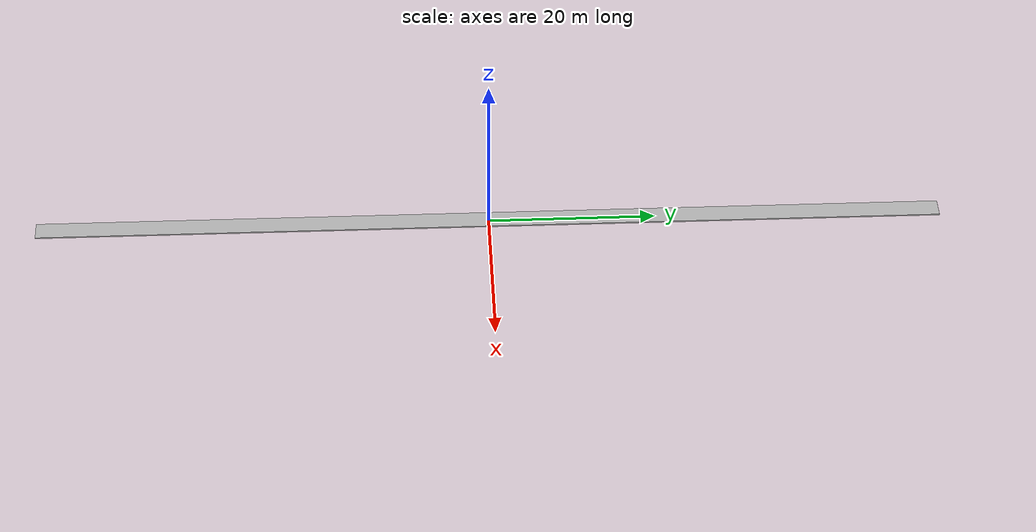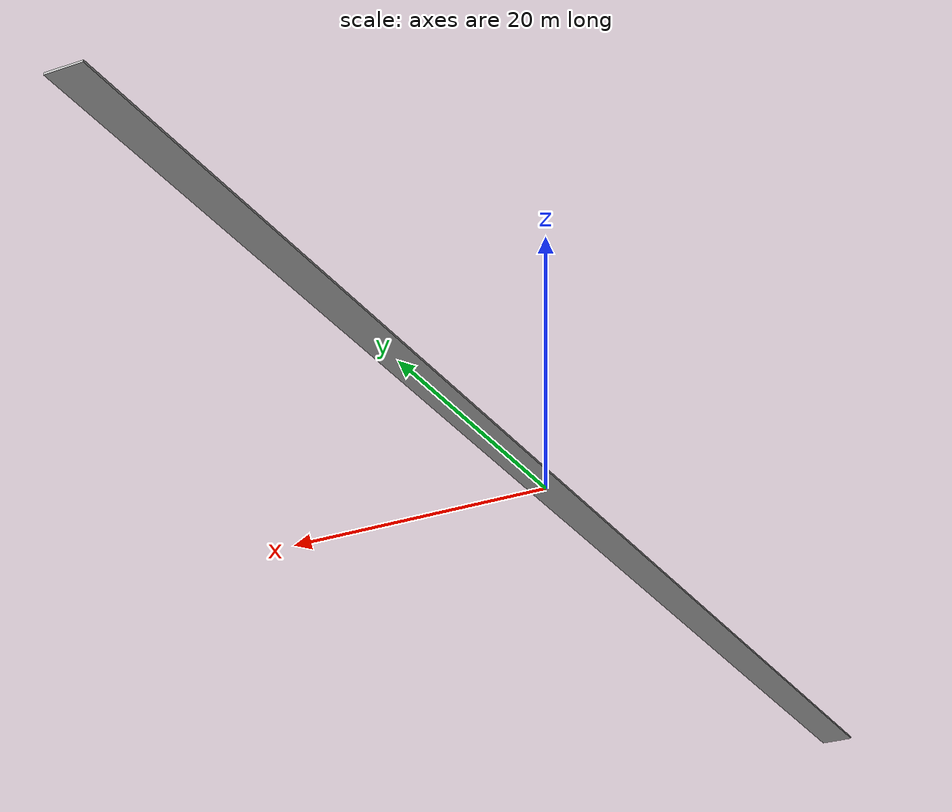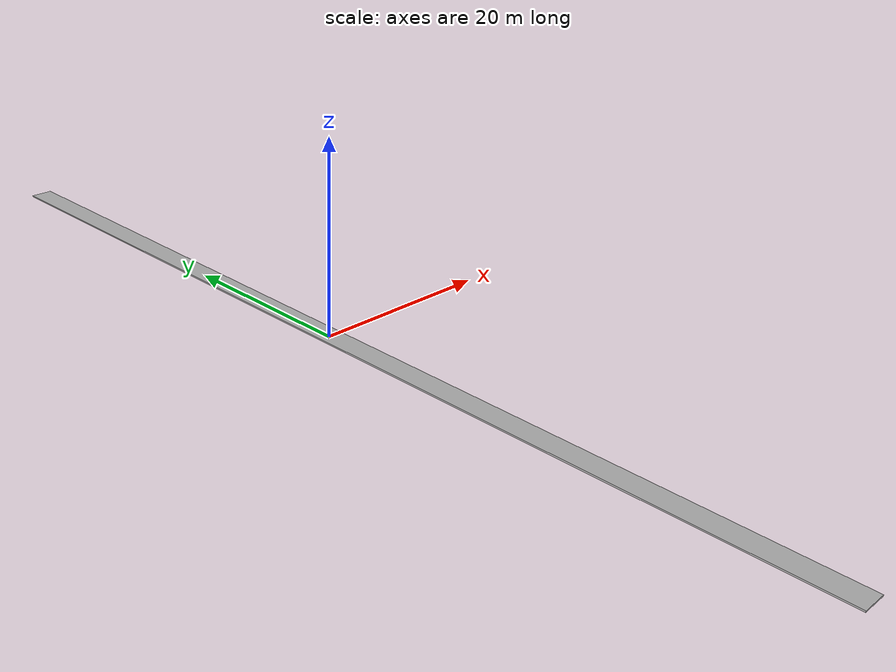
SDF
<?xml version="1.0" ?>
<sdf version="1.4">

  <model name="step">
    <static>true</static>

    <pose>0 0 0.175 0 0 0</pose>
    <link name="link">
      <collision name="collision">
        <geometry>
          <box>
            <size>2.5 108.5 .15</size>
          </box>
        </geometry>
      </collision>
      <visual name="visual">
        <geometry>
          <box>
            <size>2.5 108.5 .15</size>
          </box>
        </geometry>
      </visual>
    </link>
  </model>

</sdf>
